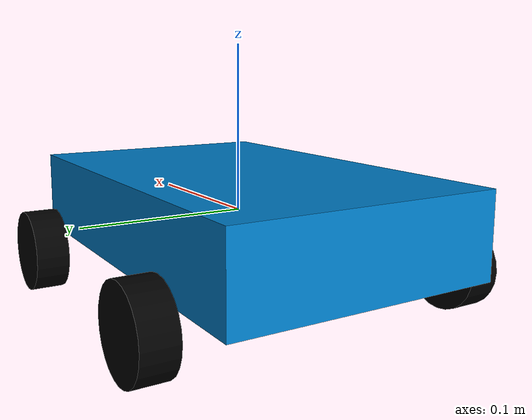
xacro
<?xml version="1.0"?>
<robot name="agilex_mini"
    xmlns:xacro="http://www.ros.org/wiki/xacro">

    <xacro:property name="length_wheel" value="0.02" />
    <xacro:property name="radius_wheel" value="0.025" />
    <xacro:macro name="default_inertial" params="mass">
        <inertial>
            <mass value="${mass}" />
            <inertia ixx="1.0" ixy="0.0" ixz="0.0" iyy="1.0" iyz="0.0" izz="1.0" />
        </inertial>
    </xacro:macro>

    <link name="base_footprint">
        <visual>
            <geometry>
                <box size="0.001 0.001 0.001"/>
            </geometry>
            <origin rpy="0 0 0" xyz="0 0 0"/>
        </visual>
        <xacro:default_inertial mass="0.0001"/>
    </link>

    <gazebo reference="base_footprint">
        <material>Gazebo/Green</material>
        <turnGravityOff>false</turnGravityOff>
    </gazebo>

    <joint name="base_footprint_joint" type="fixed">
        <origin xyz="0 0 0" />
        <parent link="base_footprint" />
        <child link="base_link" />
    </joint>

    <link name="base_link">
        <visual>
            <geometry>
                <box size="0.16 0.25 0.05"/>
            </geometry>

            <origin rpy="0 0 1.57075" xyz="0 0 0"/>

            <material name="blue">
                <color rgba="0 .5 .8 1"/>
            </material>
        </visual>

        <collision>
            <geometry>
                <box size="0.25 .16 .05"/>
            </geometry>
        </collision>
        <xacro:default_inertial mass="10"/>
    </link>

    <link name="right_front_wheel">
        <visual>
            <geometry>
                <cylinder length="${length_wheel}" radius="${radius_wheel}"/>
            </geometry>

            <origin rpy="0 0 0" xyz="0 0 0"/>

            <material name="black">
                <color rgba="0 0 0 1"/>
            </material>
        </visual>

        <collision>
            <geometry>
                <cylinder length="${length_wheel}" radius="${radius_wheel}"/>
            </geometry>
        </collision>
        <xacro:default_inertial mass="1"/>
    </link>

    <link name="left_front_wheel">
        <visual>
            <geometry>
                <cylinder length="${length_wheel}" radius="${radius_wheel}"/>
            </geometry>

            <origin rpy="0 0 0" xyz="0 0 0"/>

            <material name="black">
                <color rgba="0 0 0 1"/>
            </material>
        </visual>

        <collision>
            <geometry>
                <cylinder length="${length_wheel}" radius="${radius_wheel}"/>
            </geometry>
        </collision>
        <xacro:default_inertial mass="1"/>
    </link>

    <link name="right_back_wheel">
        <visual>
            <geometry>
                <cylinder length="${length_wheel}" radius="${radius_wheel}"/>
            </geometry>

            <origin rpy="0 0 0" xyz="0 0 0"/>

            <material name="black">
                <color rgba="0 0 0 1"/>
            </material>
        </visual>

        <collision>
            <geometry>
                <cylinder length="${length_wheel}" radius="${radius_wheel}"/>
            </geometry>
        </collision>
        <xacro:default_inertial mass="1"/>
    </link>

    <link name="left_back_wheel">
        <visual>
            <geometry>
                <cylinder length="${length_wheel}" radius="${radius_wheel}"/>
            </geometry>

            <origin rpy="0 0 0" xyz="0 0 0"/>

            <material name="black">
                <color rgba="0 0 0 1"/>
            </material>
        </visual>

        <collision>
            <geometry>
                <cylinder length="${length_wheel}" radius="${radius_wheel}"/>
            </geometry>
        </collision>
        <xacro:default_inertial mass="1"/>
    </link>

    <joint name="right_front_wheel_joint" type="continuous">
        <axis xyz="0 0 1"/>
        <parent link="base_link"/>
        <child link="right_front_wheel"/>
        <origin rpy="-1.57075 0 0" xyz="0.08 0.1 -0.03"/>
    </joint>

    <joint name="left_back_wheel_joint" type="continuous">
        <axis xyz="0 0 1"/>
        <parent link="base_link"/>
        <child link="left_back_wheel"/>
        <origin rpy="-1.57075 0 0" xyz="-0.08 -0.1 -0.03"/>
    </joint>

    <joint name="right_back_wheel_joint" type="continuous">
        <axis xyz="0 0 1"/>
        <parent link="base_link"/>
        <child link="right_back_wheel"/>
        <origin rpy="-1.57075 0 0" xyz="0.08 -0.1 -0.03"/>
    </joint>

    <joint name="left_front_wheel_joint" type="continuous">
        <axis xyz="0 0 1"/>
        <parent link="base_link"/>
        <child link="left_front_wheel"/>
        <origin rpy="-1.57075 0 0" xyz="-0.08 0.1 -0.03"/>
    </joint>

    <!-- controller -->
    <gazebo>
        <plugin name="differential_drive_controller" filename="libgazebo_ros_skid_steer_drive.so">

            <alwaysOn>true</alwaysOn>
            <updateRate>100.0</updateRate>
            <robotNamespace>/</robotNamespace>

            <leftFrontJoint>left_front_wheel_joint</leftFrontJoint>
            <leftRearJoint>left_back_wheel_joint</leftRearJoint>
            <rightFrontJoint>right_front_wheel_joint</rightFrontJoint>
            <rightRearJoint>right_back_wheel_joint</rightRearJoint>

            <wheelSeparation>0.54</wheelSeparation>
            <wheelDiameter>0.14</wheelDiameter>
            <torque>2</torque>
            <commandTopic>cmd_vel</commandTopic>
            <odometryTopic>odom</odometryTopic>
            <odometryFrame>odom</odometryFrame>
            <robotBaseFrame>base_footprint</robotBaseFrame>
            <broadcastTF>1</broadcastTF>
        </plugin>
    </gazebo>

</robot>
